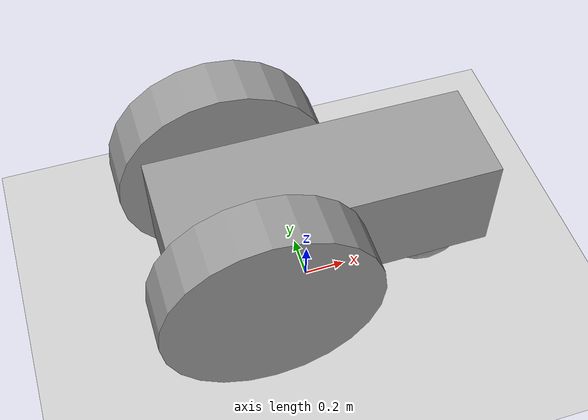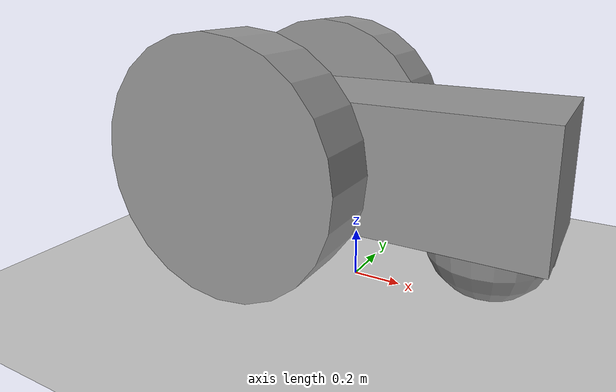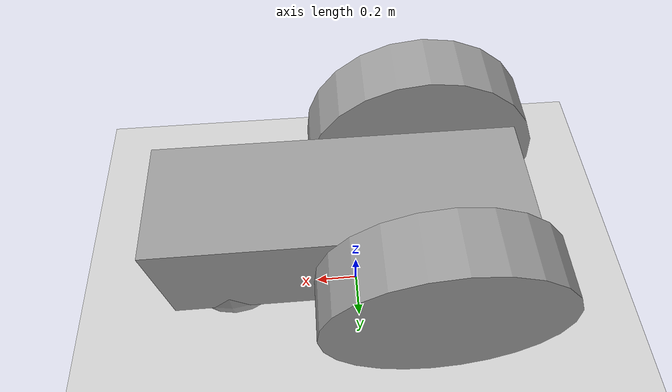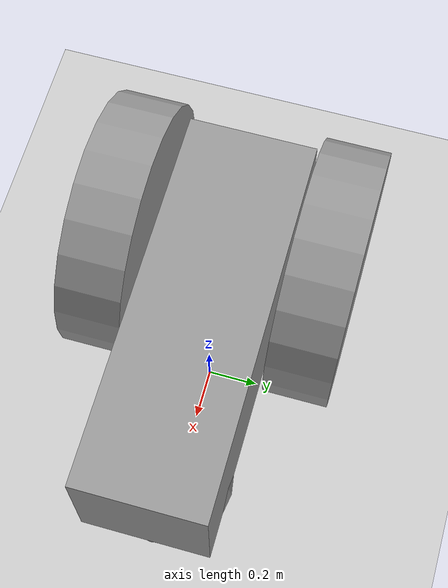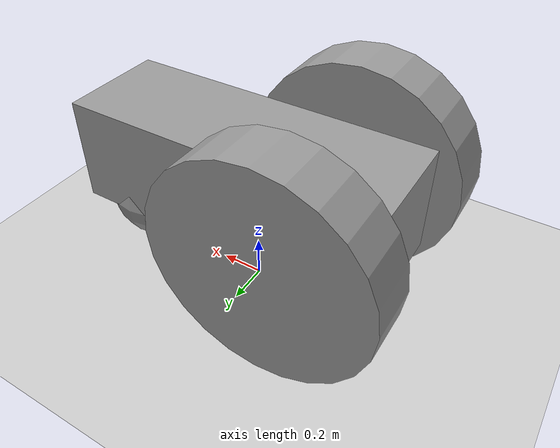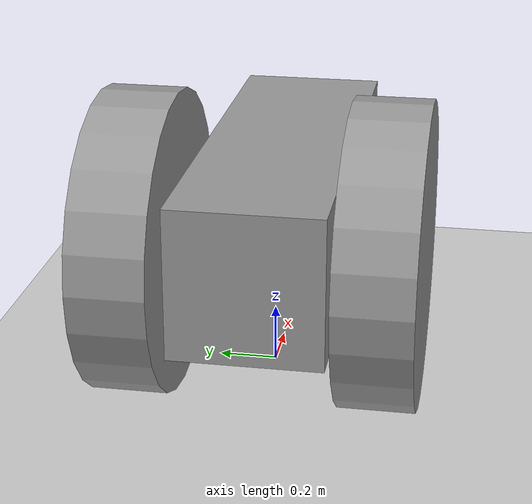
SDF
<sdf version="1.7">
	<world name="test_world">
	<plugin
		filename="ignition-gazebo-physics-system"
		name="gz::sim::systems::Physics">
	</plugin>
	<plugin
		filename="ignition-gazebo-sensors-system"
		name="gz::sim::systems::Sensors">
		<render_engine>ogre</render_engine>
	</plugin>
	<plugin
		filename="ignition-gazebo-user-commands-system"
		name="gz::sim::systems::UserCommands">
	</plugin>
	<plugin
		filename="ignition-gazebo-scene-broadcaster-system"
		name="gz::sim::systems::SceneBroadcaster">
	</plugin>

		<gravity>0 0 -9.8</gravity>
		<include>
			<uri>	https://fuel.gazebosim.org/1.0/OpenRobotics/models/Sun</uri>
		</include>

		<include>
			<uri>../models/ground_plane</uri>
		</include>
		<include>
			<pose>0 0 0.5 0 0 0</pose>
			<uri>wheeled_model</uri>
		</include>

	</world>
</sdf>

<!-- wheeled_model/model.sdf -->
<sdf version='1.7'>
  <model name='wheeled_model'>
    <link name='link_0'>
      <inertial>
        <mass>1</mass>
        <inertia>
          <ixx>0.166667</ixx>
          <ixy>0</ixy>
          <ixz>0</ixz>
          <iyy>0.166667</iyy>
          <iyz>0</iyz>
          <izz>0.166667</izz>
        </inertia>
        <pose>0 0 0 0 -0 0</pose>
      </inertial>
      <pose>0.0625 -0.0125 0.0625 0 -0 0</pose>
      <gravity>1</gravity>
      <self_collide>0</self_collide>
      <kinematic>0</kinematic>
      <enable_wind>0</enable_wind>
      <visual name='visual'>
        <pose>0 0 0 0 -0 0</pose>
        <geometry>
          <box>
            <size>1.5 0.5 0.5</size>
          </box>
        </geometry>
        <material>
          <lighting>1</lighting>
          <script>
            <uri>file://media/materials/scripts/gazebo.material</uri>
            <name>Gazebo/Grey</name>
          </script>
          <shader type='pixel'>
            <normal_map>__default__</normal_map>
          </shader>
          <ambient>0.3 0.3 0.3 1</ambient>
          <diffuse>0.7 0.7 0.7 1</diffuse>
          <specular>0.01 0.01 0.01 1</specular>
          <emissive>0 0 0 1</emissive>
        </material>
        <transparency>0</transparency>
        <cast_shadows>1</cast_shadows>
      </visual>
      <collision name='collision'>
        <laser_retro>0</laser_retro>
        <max_contacts>10</max_contacts>
        <pose>0 0 0 0 -0 0</pose>
        <geometry>
          <box>
            <size>1.5 0.5 0.5</size>
          </box>
        </geometry>
        <surface>
          <friction>
            <ode>
              <mu>1</mu>
              <mu2>1</mu2>
              <fdir1>0 0 0</fdir1>
              <slip1>0</slip1>
              <slip2>0</slip2>
            </ode>
            <torsional>
              <coefficient>1</coefficient>
              <patch_radius>0</patch_radius>
              <surface_radius>0</surface_radius>
              <use_patch_radius>1</use_patch_radius>
              <ode>
                <slip>0</slip>
              </ode>
            </torsional>
          </friction>
          <bounce>
            <restitution_coefficient>0</restitution_coefficient>
            <threshold>1e+06</threshold>
          </bounce>
          <contact>
            <collide_without_contact>0</collide_without_contact>
            <collide_without_contact_bitmask>1</collide_without_contact_bitmask>
            <collide_bitmask>1</collide_bitmask>
            <ode>
              <soft_cfm>0</soft_cfm>
              <soft_erp>0.2</soft_erp>
              <kp>1e+13</kp>
              <kd>1</kd>
              <max_vel>0.01</max_vel>
              <min_depth>0</min_depth>
            </ode>
            <bullet>
              <split_impulse>1</split_impulse>
              <split_impulse_penetration_threshold>-0.01</split_impulse_penetration_threshold>
              <soft_cfm>0</soft_cfm>
              <soft_erp>0.2</soft_erp>
              <kp>1e+13</kp>
              <kd>1</kd>
            </bullet>
          </contact>
        </surface>
      </collision>
    </link>
    <link name='link_1'>
      <inertial>
        <mass>1</mass>
        <inertia>
          <ixx>0.145833</ixx>
          <ixy>0</ixy>
          <ixz>0</ixz>
          <iyy>0.145833</iyy>
          <iyz>0</iyz>
          <izz>0.125</izz>
        </inertia>
        <pose>0 0 0 0 -0 0</pose>
      </inertial>
      <pose>-0.3125 -0.4125 0.0625 1.5708 -0 0</pose>
      <gravity>1</gravity>
      <self_collide>0</self_collide>
      <kinematic>0</kinematic>
      <enable_wind>0</enable_wind>
      <visual name='visual'>
        <pose>0 0 0 0 -0 0</pose>
        <geometry>
          <cylinder>
            <radius>0.5</radius>
            <length>0.25</length>
          </cylinder>
        </geometry>
        <material>
          <lighting>1</lighting>
          <script>
            <uri>file://media/materials/scripts/gazebo.material</uri>
            <name>Gazebo/Grey</name>
          </script>
          <shader type='pixel'>
            <normal_map>__default__</normal_map>
          </shader>
          <ambient>0.3 0.3 0.3 1</ambient>
          <diffuse>0.7 0.7 0.7 1</diffuse>
          <specular>0.01 0.01 0.01 1</specular>
          <emissive>0 0 0 1</emissive>
        </material>
        <transparency>0</transparency>
        <cast_shadows>1</cast_shadows>
      </visual>
      <collision name='collision'>
        <laser_retro>0</laser_retro>
        <max_contacts>10</max_contacts>
        <pose>0 0 0 0 -0 0</pose>
        <geometry>
          <cylinder>
            <radius>0.5</radius>
            <length>0.25</length>
          </cylinder>
        </geometry>
        <surface>
          <friction>
            <ode>
              <mu>1</mu>
              <mu2>1</mu2>
              <fdir1>0 0 0</fdir1>
              <slip1>0</slip1>
              <slip2>0</slip2>
            </ode>
            <torsional>
              <coefficient>1</coefficient>
              <patch_radius>0</patch_radius>
              <surface_radius>0</surface_radius>
              <use_patch_radius>1</use_patch_radius>
              <ode>
                <slip>0</slip>
              </ode>
            </torsional>
          </friction>
          <bounce>
            <restitution_coefficient>0</restitution_coefficient>
            <threshold>1e+06</threshold>
          </bounce>
          <contact>
            <collide_without_contact>0</collide_without_contact>
            <collide_without_contact_bitmask>1</collide_without_contact_bitmask>
            <collide_bitmask>1</collide_bitmask>
            <ode>
              <soft_cfm>0</soft_cfm>
              <soft_erp>0.2</soft_erp>
              <kp>1e+13</kp>
              <kd>1</kd>
              <max_vel>0.01</max_vel>
              <min_depth>0</min_depth>
            </ode>
            <bullet>
              <split_impulse>1</split_impulse>
              <split_impulse_penetration_threshold>-0.01</split_impulse_penetration_threshold>
              <soft_cfm>0</soft_cfm>
              <soft_erp>0.2</soft_erp>
              <kp>1e+13</kp>
              <kd>1</kd>
            </bullet>
          </contact>
        </surface>
      </collision>
    </link>
    <link name='link_1_clone'>
      <inertial>
        <mass>1</mass>
        <inertia>
          <ixx>0.145833</ixx>
          <ixy>0</ixy>
          <ixz>0</ixz>
          <iyy>0.145833</iyy>
          <iyz>0</iyz>
          <izz>0.125</izz>
        </inertia>
        <pose>0 0 0 0 -0 0</pose>
      </inertial>
      <pose>-0.3125 0.3875 0.0625 1.5708 -0 0</pose>
      <gravity>1</gravity>
      <self_collide>0</self_collide>
      <kinematic>0</kinematic>
      <enable_wind>0</enable_wind>
      <visual name='visual'>
        <pose>0 0 0 0 -0 0</pose>
        <geometry>
          <cylinder>
            <radius>0.5</radius>
            <length>0.25</length>
          </cylinder>
        </geometry>
        <material>
          <lighting>1</lighting>
          <script>
            <uri>file://media/materials/scripts/gazebo.material</uri>
            <name>Gazebo/Grey</name>
          </script>
          <shader type='pixel'>
            <normal_map>__default__</normal_map>
          </shader>
          <ambient>0.3 0.3 0.3 1</ambient>
          <diffuse>0.7 0.7 0.7 1</diffuse>
          <specular>0.01 0.01 0.01 1</specular>
          <emissive>0 0 0 1</emissive>
        </material>
        <transparency>0</transparency>
        <cast_shadows>1</cast_shadows>
      </visual>
      <collision name='collision'>
        <laser_retro>0</laser_retro>
        <max_contacts>10</max_contacts>
        <pose>0 0 0 0 -0 0</pose>
        <geometry>
          <cylinder>
            <radius>0.5</radius>
            <length>0.25</length>
          </cylinder>
        </geometry>
        <surface>
          <friction>
            <ode>
              <mu>1</mu>
              <mu2>1</mu2>
              <fdir1>0 0 0</fdir1>
              <slip1>0</slip1>
              <slip2>0</slip2>
            </ode>
            <torsional>
              <coefficient>1</coefficient>
              <patch_radius>0</patch_radius>
              <surface_radius>0</surface_radius>
              <use_patch_radius>1</use_patch_radius>
              <ode>
                <slip>0</slip>
              </ode>
            </torsional>
          </friction>
          <bounce>
            <restitution_coefficient>0</restitution_coefficient>
            <threshold>1e+06</threshold>
          </bounce>
          <contact>
            <collide_without_contact>0</collide_without_contact>
            <collide_without_contact_bitmask>1</collide_without_contact_bitmask>
            <collide_bitmask>1</collide_bitmask>
            <ode>
              <soft_cfm>0</soft_cfm>
              <soft_erp>0.2</soft_erp>
              <kp>1e+13</kp>
              <kd>1</kd>
              <max_vel>0.01</max_vel>
              <min_depth>0</min_depth>
            </ode>
            <bullet>
              <split_impulse>1</split_impulse>
              <split_impulse_penetration_threshold>-0.01</split_impulse_penetration_threshold>
              <soft_cfm>0</soft_cfm>
              <soft_erp>0.2</soft_erp>
              <kp>1e+13</kp>
              <kd>1</kd>
            </bullet>
          </contact>
        </surface>
      </collision>
    </link>
    <link name='link_2'>
      <inertial>
        <mass>1</mass>
        <inertia>
          <ixx>0.1</ixx>
          <ixy>0</ixy>
          <ixz>0</ixz>
          <iyy>0.1</iyy>
          <iyz>0</iyz>
          <izz>0.1</izz>
        </inertia>
        <pose>0 0 0 0 -0 0</pose>
      </inertial>
      <pose>0.5625 0 -0.1875 0 -0 0</pose>
      <gravity>1</gravity>
      <self_collide>0</self_collide>
      <kinematic>0</kinematic>
      <enable_wind>0</enable_wind>
      <visual name='visual'>
        <pose>0 0 0 0 -0 0</pose>
        <geometry>
          <sphere>
            <radius>0.25</radius>
          </sphere>
        </geometry>
        <material>
          <lighting>1</lighting>
          <script>
            <uri>file://media/materials/scripts/gazebo.material</uri>
            <name>Gazebo/Grey</name>
          </script>
          <shader type='pixel'>
            <normal_map>__default__</normal_map>
          </shader>
          <ambient>0.3 0.3 0.3 1</ambient>
          <diffuse>0.7 0.7 0.7 1</diffuse>
          <specular>0.01 0.01 0.01 1</specular>
          <emissive>0 0 0 1</emissive>
        </material>
        <transparency>0</transparency>
        <cast_shadows>1</cast_shadows>
      </visual>
      <collision name='collision'>
        <laser_retro>0</laser_retro>
        <max_contacts>10</max_contacts>
        <pose>0 0 0 0 -0 0</pose>
        <geometry>
          <sphere>
            <radius>0.25</radius>
          </sphere>
        </geometry>
        <surface>
          <friction>
            <ode>
              <mu>0.1</mu>
              <mu2>0.1</mu2>
              <fdir1>0 0 0</fdir1>
              <slip1>0</slip1>
              <slip2>0</slip2>
            </ode>
            <torsional>
              <coefficient>1</coefficient>
              <patch_radius>0</patch_radius>
              <surface_radius>0</surface_radius>
              <use_patch_radius>1</use_patch_radius>
              <ode>
                <slip>0</slip>
              </ode>
            </torsional>
          </friction>
          <bounce>
            <restitution_coefficient>0</restitution_coefficient>
            <threshold>1e+06</threshold>
          </bounce>
          <contact>
            <collide_without_contact>0</collide_without_contact>
            <collide_without_contact_bitmask>1</collide_without_contact_bitmask>
            <collide_bitmask>1</collide_bitmask>
            <ode>
              <soft_cfm>0</soft_cfm>
              <soft_erp>0.2</soft_erp>
              <kp>1e+13</kp>
              <kd>1</kd>
              <max_vel>0.01</max_vel>
              <min_depth>0</min_depth>
            </ode>
            <bullet>
              <split_impulse>1</split_impulse>
              <split_impulse_penetration_threshold>-0.01</split_impulse_penetration_threshold>
              <soft_cfm>0</soft_cfm>
              <soft_erp>0.2</soft_erp>
              <kp>1e+13</kp>
              <kd>1</kd>
            </bullet>
          </contact>
        </surface>
      </collision>
    </link>
    <joint name='link_0_JOINT_0' type='revolute'>
      <parent>link_0</parent>
      <child>link_1</child>
      <pose>0 0 0 0 -0 0</pose>
      <axis>
        <xyz>-0 -0 -1</xyz>
        <limit>
          <lower>-1.79769e+308</lower>
          <upper>1.79769e+308</upper>
          <effort>-1</effort>
          <velocity>-1</velocity>
        </limit>
        <dynamics>
          <spring_reference>0</spring_reference>
          <spring_stiffness>0</spring_stiffness>
          <damping>0</damping>
        </dynamics>
      </axis>
      <physics>
        <ode>
          <limit>
            <cfm>0</cfm>
            <erp>0.2</erp>
          </limit>
          <suspension>
            <cfm>0</cfm>
            <erp>0.2</erp>
          </suspension>
        </ode>
      </physics>
    </joint>
    <joint name='link_0_JOINT_1' type='revolute'>
      <parent>link_0</parent>
      <child>link_1_clone</child>
      <pose>0 0 0 0 -0 0</pose>
      <axis>
        <xyz>-0 -0 -1</xyz>
        <limit>
          <lower>-1.79769e+308</lower>
          <upper>1.79769e+308</upper>
          <effort>-1</effort>
          <velocity>-1</velocity>
        </limit>
        <dynamics>
          <spring_reference>0</spring_reference>
          <spring_stiffness>0</spring_stiffness>
          <damping>0</damping>
        </dynamics>
      </axis>
      <physics>
        <ode>
          <limit>
            <cfm>0</cfm>
            <erp>0.2</erp>
          </limit>
          <suspension>
            <cfm>0</cfm>
            <erp>0.2</erp>
          </suspension>
        </ode>
      </physics>
    </joint>
    <joint name='link_0_JOINT_4' type='fixed'>
      <parent>link_0</parent>
      <child>link_2</child>
      <pose>0 0 0 0 -0 0</pose>
      <physics>
        <ode>
          <limit>
            <cfm>0</cfm>
            <erp>0.2</erp>
          </limit>
          <suspension>
            <cfm>0</cfm>
            <erp>0.2</erp>
          </suspension>
        </ode>
      </physics>
    </joint>
    <static>0</static>
    <allow_auto_disable>1</allow_auto_disable>
    <plugin
    filename="ignition-gazebo-diff-drive-system"
    name="gz::sim::systems::DiffDrive">
      <left_joint>link_0_JOINT_1</left_joint>
      <right_joint>link_0_JOINT_0</right_joint>
      <wheel_separation>0.8</wheel_separation>
      <wheel_radius>0.5</wheel_radius>
      <max_linear_acceleration>1</max_linear_acceleration>
      <min_linear_acceleration>-1</min_linear_acceleration>
      <max_angular_acceleration>2</max_angular_acceleration>
      <min_angular_acceleration>-2</min_angular_acceleration>
      <max_linear_velocity>0.5</max_linear_velocity>
      <min_linear_velocity>-0.5</min_linear_velocity>
      <max_angular_velocity>1</max_angular_velocity>
      <min_angular_velocity>-1</min_angular_velocity>
    </plugin>
    <plugin
    filename="ignition-gazebo-diff-drive-system"
    name="gz::sim::systems::DiffDrive">
      <left_joint>link_0_JOINT_3</left_joint>
      <right_joint>link_0_JOINT_2</right_joint>
      <wheel_separation>0.8</wheel_separation>
      <wheel_radius>0.5</wheel_radius>
      <max_linear_acceleration>1</max_linear_acceleration>
      <min_linear_acceleration>-1</min_linear_acceleration>
      <max_angular_acceleration>2</max_angular_acceleration>
      <min_angular_acceleration>-2</min_angular_acceleration>
      <max_linear_velocity>0.5</max_linear_velocity>
      <min_linear_velocity>-0.5</min_linear_velocity>
      <max_angular_velocity>1</max_angular_velocity>
      <min_angular_velocity>-1</min_angular_velocity>
    </plugin>
  </model>
</sdf>
